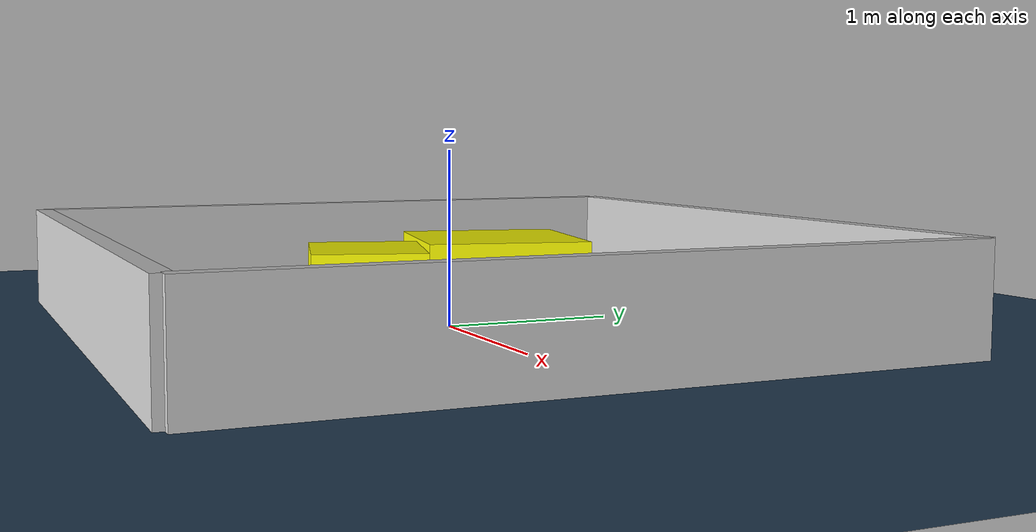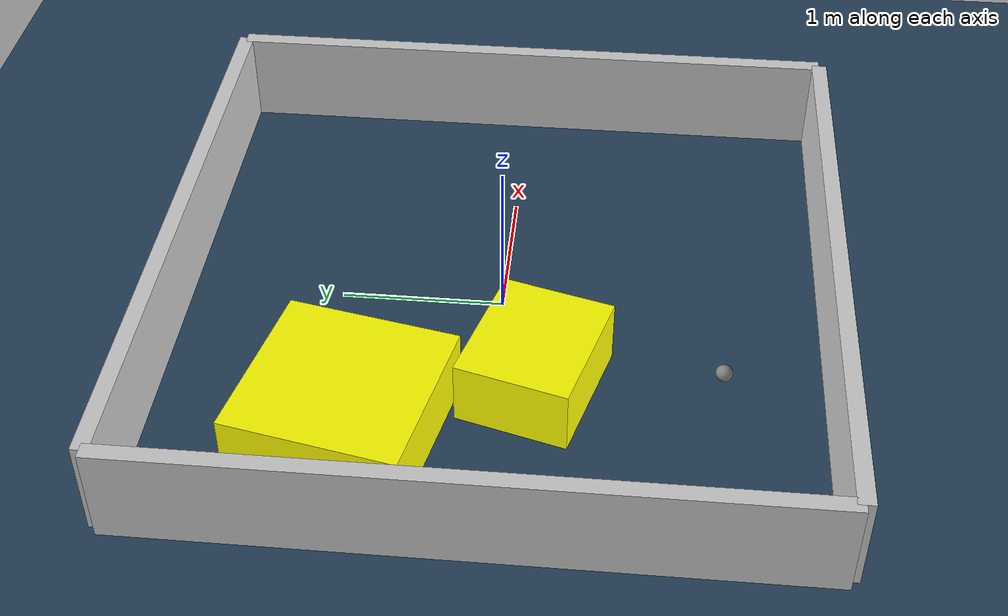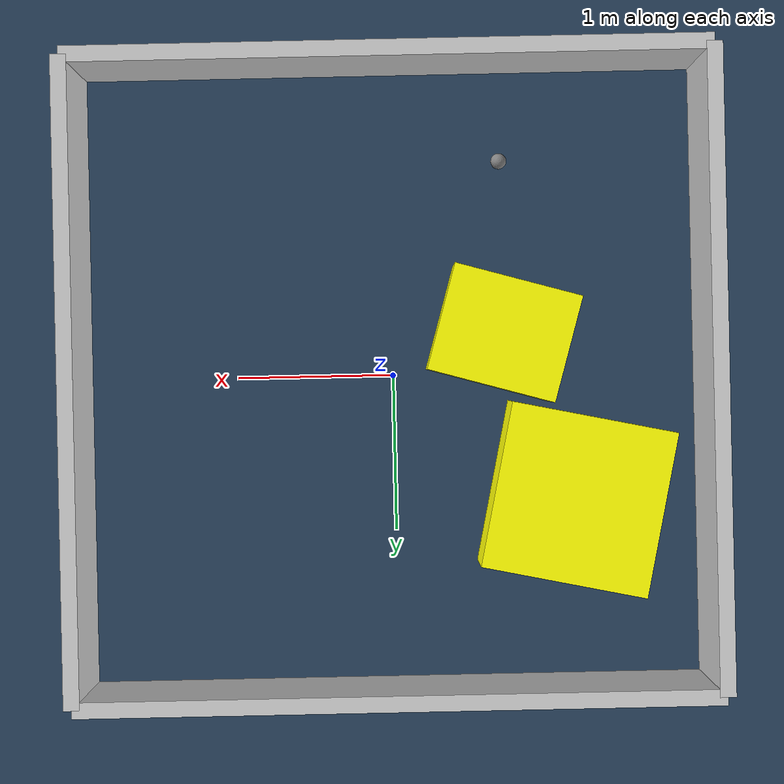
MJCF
<?xml version="1.0" ?>
<mujoco model="generated_environment">
  <option timestep="0.01" integrator="RK4" cone="elliptic"/>
  <default>
    <geom density="1"/>
  </default>
  <asset>
    <texture builtin="gradient" height="3072" rgb1="0.3 0.5 0.7" rgb2="0 0 0" type="skybox" width="512"/>
    <texture builtin="checker" height="300" mark="edge" markrgb="0.8 0.8 0.8" name="groundplane" rgb1="0.2 0.3 0.4" rgb2="0.1 0.2 0.3" type="2d" width="300"/>
    <material name="groundplane" reflectance="0.2" texrepeat="5 5" texture="groundplane" texuniform="true"/>
    <material name="robot" rgba="0.0 1.0 0.0 1"/>
  </asset>
  <worldbody>
    <light dir="0 0 -1" directional="true" pos="0 0 1.5"/>
    <geom condim="4" friction="1.0 0.005 0.001" material="groundplane" name="floor" size="0 0 0.05" type="plane"/>
    <body name="walls">
      <geom name="wall_1" condim="4" pos="-2.0 0.0 0.3" rgba="0.800000011920929 0.800000011920929 0.800000011920929 1.0" size="0.05 2.0 0.3" type="box"/>
      <geom name="wall_2" condim="4" pos="2.0 0.0 0.3" rgba="0.800000011920929 0.800000011920929 0.800000011920929 1.0" size="0.05 2.0 0.3" type="box"/>
      <geom name="wall_3" condim="4" pos="0.0 -2.0 0.3" rgba="0.800000011920929 0.800000011920929 0.800000011920929 1.0" size="2.0 0.05 0.3" type="box"/>
      <geom name="wall_4" condim="4" pos="0.0 2.0 0.3" rgba="0.800000011920929 0.800000011920929 0.800000011920929 1.0" size="2.0 0.05 0.3" type="box"/>
    </body>
    <body name="robot">
      <joint name="joint_x" type="slide" pos="0 0 0" axis="1 0 0"/>
      <joint name="joint_y" type="slide" pos="0 0 0" axis="0 1 0"/>
      <geom name="robot" type="sphere" pos="-0.6987053654585973 -1.3489100458766885 0.2" size="0.05" mass="5." friction="1.0 0.005 0.0001" condim="4"/>
      <site name="sensor_ball"/>
    </body>
    <body name="obstacle_1_movable">
      <geom name="obstacle_1_movable" condim="4" pos="-1.1488385673556616 0.7987491740543895 0.2" euler="0 0 348.0583280460079" friction="1.0 0.005 0.001" rgba="1 1 0 1" size="0.5277591079375985 0.5255305060592899 0.2" type="box" mass="0.1"/>
      <joint type="free"/>
    </body>
    <body name="obstacle_2_movable">
      <geom name="obstacle_2_movable" condim="4" pos="-0.7041473869016467 -0.25459331423328724 0.2" euler="0 0 344.1518386129098" friction="1.0 0.005 0.001" rgba="1 1 0 1" size="0.4124948039101395 0.3438698112640993 0.2" type="box" mass="0.1"/>
      <joint type="free"/>
    </body>
  </worldbody>
  <actuator>
    <motor name="actuator_x" joint="joint_x" gear="1" ctrlrange="-1 1"/>
    <motor name="actuator_y" joint="joint_y" gear="1" ctrlrange="-1 1"/>
  </actuator>
</mujoco>
